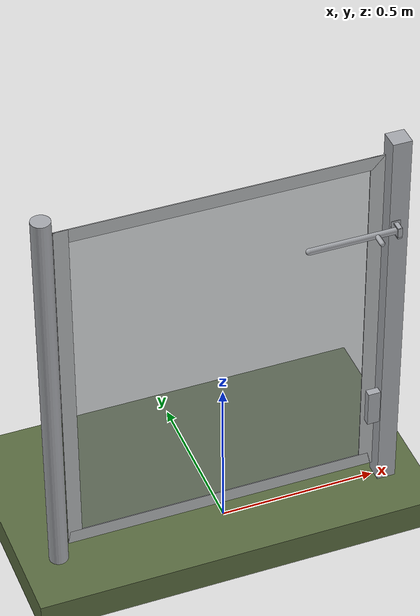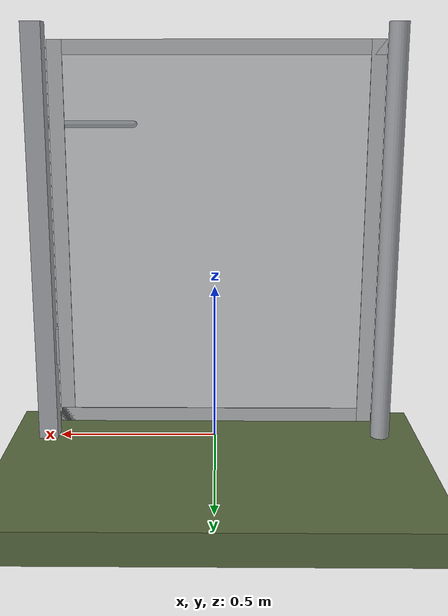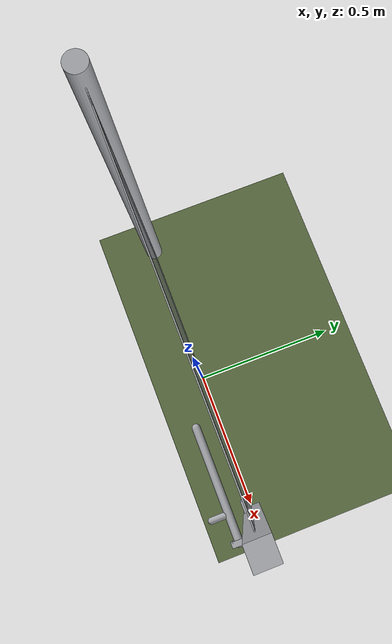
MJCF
<?xml version="1.0" ?>
<mujoco model="db0162_gate_swing_minimal">
  <compiler angle="radian" meshdir="../../hardware" texturedir="../../textures" autolimits="true" inertiafromgeom="false"/>
  <option timestep="0.002" integrator="implicitfast" cone="elliptic" impratio="10" noslip_iterations="3">
    <flag multiccd="enable"/>
  </option>
  <size memory="16M"/>
  <default>
    <geom condim="4" solref="0.005 1" solimp="0.95 0.99 0.001"/>
    <joint solreflimit="0.005 1" solimplimit="0.95 0.99 0.001"/>
    <tendon solreflimit="0.005 1"/>
    <equality solref="0.002 1"/>
  </default>
  <visual>
    <headlight ambient="0.4 0.4 0.4" diffuse="0.7 0.7 0.7" specular="0.2 0.2 0.2"/>
    <quality shadowsize="4096"/>
    <map znear="0.01" zfar="60"/>
  </visual>
  <asset>
    <material name="mat_floor" rgba="0.35 0.42 0.25 1" specular="0.2" shininess="0.15" reflectance="0"/>
    <material name="mat_wall" rgba="0.78 0.76 0.7 1" specular="0.2" shininess="0.1" reflectance="0"/>
    <material name="mat_leaf" rgba="0.7 0.71 0.72 1" specular="0.74" shininess="0.5" reflectance="0.36"/>
    <material name="mat_mesh_infill" rgba="0.6 0.62 0.64 0.55" specular="0.68" shininess="0.3" reflectance="0.1"/>
    <material name="mat_hinge" rgba="0.65 0.66 0.68 1" specular="0.74" shininess="0.5" reflectance="0.36"/>
    <material name="mat_op_steel_galvanized" rgba="0.65 0.66 0.68 1" specular="0.74" shininess="0.5" reflectance="0.36"/>
    <material name="mat_frame" rgba="0.65 0.66 0.68 1" specular="0.74" shininess="0.5" reflectance="0.36"/>
    <material name="mat_bumper_stop" rgba="0.08 0.08 0.08 1" specular="0.2" shininess="0.1" reflectance="0"/>
    <material name="mat_stop_base" rgba="0.9 0.9 0.92 1" specular="0.8" shininess="0.9" reflectance="0.4"/>
    <material name="mat_fence_mesh" rgba="0.6 0.62 0.64 0.5" specular="0.68" shininess="0.3" reflectance="0.1"/>
    <texture name="skybox" type="skybox" builtin="gradient" rgb1="0.6 0.7 0.85" rgb2="0.9 0.92 0.95" width="256" height="256"/>
  </asset>
  <worldbody>
    <light name="sun" pos="1.5 -2.5 4" dir="-0.3 0.5 -0.8" directional="true" diffuse="0.8 0.8 0.8" specular="0.3 0.3 0.3" castshadow="true"/>
    <light name="fill" pos="-1.5 2.5 3" dir="0.3 -0.5 -0.7" directional="true" diffuse="0.35 0.35 0.4" castshadow="false"/>
    <camera name="robot_view" pos="0 -1.875 1.135" xyaxes="1 0 0 0 0.26963 0.962964" fovy="52"/>
    <camera name="far_view" pos="0 1.875 1.135" xyaxes="-1 0 0 0 -0.26963 0.962964" fovy="52"/>
    <camera name="iso" pos="1.425 -1.575 1.435" xyaxes="0.741536 0.670913 0 -0.242917 0.268487 0.932151" fovy="46"/>
    <camera name="detail_handle" pos="0.639 -0.9 1.28" xyaxes="0.97561 0.219512 0 -0.070934 0.315262 0.94635" fovy="38"/>
    <geom name="floor" type="box" size="6 6 0.05" pos="0 0 -0.05" material="mat_floor" group="0" contype="1" conaffinity="1" friction="0.8 0.005 0.0001" density="2400"/>
    <geom name="leaf_slide_bolt_keeper_leg_n" type="box" size="0.007 0.0025 0.017" pos="0.526 -0.047 0.9845" quat="0.707107 0.707107 0 0" material="mat_op_steel_galvanized" group="0" contype="1" conaffinity="1" friction="0.6 0.005 0.0001" density="7800"/>
    <geom name="leaf_slide_bolt_keeper_leg_p" type="box" size="0.007 0.0025 0.017" pos="0.526 -0.047 1.0155" quat="0.707107 0.707107 0 0" material="mat_op_steel_galvanized" group="0" contype="1" conaffinity="1" friction="0.6 0.005 0.0001" density="7800"/>
    <geom name="leaf_slide_bolt_keeper_bridge" type="box" size="0.007 0.018 0.0025" pos="0.526 -0.0615 1" quat="0.707107 0.707107 0 0" material="mat_op_steel_galvanized" group="0" contype="1" conaffinity="1" friction="0.6 0.005 0.0001" density="7800"/>
    <geom name="leaf_slide_bolt_keeper_base" type="box" size="0.015 0.024 0.001" pos="0.526 -0.031 1" quat="0.707107 0.707107 0 0" material="mat_op_steel_galvanized" group="1" contype="0" conaffinity="0" density="7800"/>
    <geom name="post_hinge" type="cylinder" size="0.03 0.65" pos="-0.536 0 0.65" material="mat_frame" group="0" contype="1" conaffinity="1" friction="0.6 0.005 0.0001" density="800"/>
    <geom name="post_latch" type="box" size="0.03 0.03 0.65" pos="0.536 0 0.65" material="mat_frame" group="0" contype="1" conaffinity="1" friction="0.6 0.005 0.0001" density="800"/>
    <geom name="gate_stop" type="box" size="0.02 0.012 0.06" pos="0.486 -0.0135 0.3" material="mat_frame" group="0" contype="1" conaffinity="1" friction="0.6 0.005 0.0001" density="800"/>
    <site name="approach_point" pos="0 -1.5 0" quat="1 0 0 0" size="0.05" rgba="0.2 0.9 0.2 0.5" group="4"/>
    <site name="goal_point" pos="0 1.5 0" quat="1 0 0 0" size="0.05" rgba="0.2 0.9 0.2 0.5" group="4"/>
    <site name="door_plane_center" pos="0 0 0.61" quat="1 0 0 0" size="0.02" rgba="0.2 0.9 0.2 0.5" group="4"/>
    <body name="leaf" pos="-0.506 0 0">
      <inertial pos="0.503 0 0.65" mass="5.590675" quat="-0.5 0.5 0.5 0.5" diaginertia="0.465900736 0.670895459 1.136787809"/>
      <joint name="leaf_hinge" type="hinge" axis="0 0 1" pos="0.003 0.05 0" limited="true" range="0 1.745329" damping="0.26672" frictionloss="0.562567" armature="0.02"/>
      <geom name="leaf_slab_col" type="box" size="0.5 0.0015 0.6" pos="0.503 0 0.65" material="mat_leaf" group="3" contype="1" conaffinity="1" rgba="0.8 0.3 0.3 0.25" friction="0.45 0.005 0.0001" density="1"/>
      <geom name="leaf_rail_b" type="box" size="0.5 0.0015 0.0225" pos="0.503 0 0.0725" material="mat_leaf" group="1" contype="0" conaffinity="0" density="1"/>
      <geom name="leaf_rail_t" type="box" size="0.5 0.0015 0.0225" pos="0.503 0 1.2275" material="mat_leaf" group="1" contype="0" conaffinity="0" density="1"/>
      <geom name="leaf_stile_h" type="box" size="0.0225 0.0015 0.6" pos="0.0255 0 0.65" material="mat_leaf" group="1" contype="0" conaffinity="0" density="1"/>
      <geom name="leaf_stile_l" type="box" size="0.0225 0.0015 0.6" pos="0.9805 0 0.65" material="mat_leaf" group="1" contype="0" conaffinity="0" density="1"/>
      <geom name="leaf_mesh" type="box" size="0.455 0.0015 0.555" pos="0.503 0 0.65" material="mat_mesh_infill" group="1" contype="0" conaffinity="0" density="1"/>
      <site name="leaf_edge_mid" pos="1.003 0 0.6" quat="1 0 0 0" size="0.02" rgba="0.2 0.9 0.2 0.5" group="4"/>
      <body name="leaf_slide_bolt" pos="1.003 -0.046 1">
        <inertial pos="-0.102695 -0.00222 0" mass="0.793903" quat="0.010462 0 0 0.999945" diaginertia="0.000086646 0.005537364 0.005586021"/>
        <joint name="leaf_slide_bolt_slide" type="slide" axis="-1 0 0" limited="true" range="0 0.08" damping="1" frictionloss="3" armature="0.1"/>
        <geom name="leaf_slide_bolt_rod" type="capsule" size="0.01 0.14" pos="-0.109 0 0" quat="0.707107 0 0.707107 0" material="mat_op_steel_galvanized" group="0" contype="1" conaffinity="1" friction="0.6 0.005 0.0001" density="7850"/>
        <geom name="leaf_slide_bolt_knob" type="capsule" size="0.008 0.017" pos="-0.038 -0.025 0" quat="0.707107 0.707107 0 0" material="mat_op_steel_galvanized" group="0" contype="1" conaffinity="1" friction="0.6 0.005 0.0001" density="7850"/>
        <site name="leaf_grip_n" pos="-0.038 -0.054 0" quat="1 0 0 0" size="0.012" rgba="0.2 0.9 0.2 0.5" group="4"/>
      </body>
    </body>
  </worldbody>
  <sensor>
    <jointpos name="leaf_hinge_pos" joint="leaf_hinge"/>
    <jointvel name="leaf_hinge_vel" joint="leaf_hinge"/>
    <jointpos name="leaf_slide_bolt_slide_pos" joint="leaf_slide_bolt_slide"/>
    <jointvel name="leaf_slide_bolt_slide_vel" joint="leaf_slide_bolt_slide"/>
  </sensor>
</mujoco>
